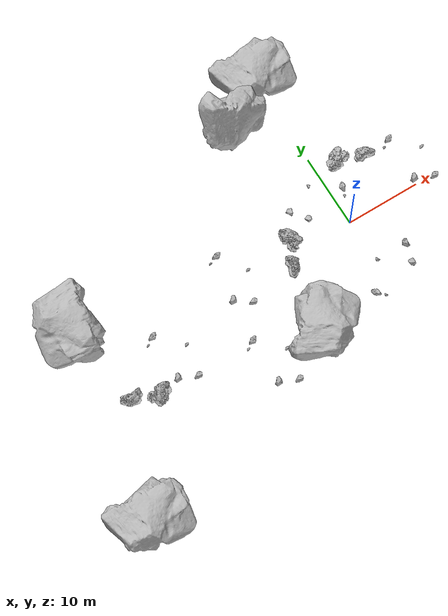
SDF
<sdf version="1.5">
 <world name="default">
  <scene>
   <background>202 150 66</background>
   <sky><clouds><speed>50</speed></clouds></sky>
   <ambient>0 0 0 1.0</ambient>
   <shadows>0</shadows>
  </scene>
  <include><uri>model://sun</uri></include>
  <include><uri>model://rockformation</uri><name>rockformation</name><pose>1 -9 -0.65 0 0 1.75</pose></include>
  <include>
   <uri>model://rockformation</uri>
   <name>rockformation2</name>
   <pose>-1 4 -0.5 3.141593 -0.008 1.7915</pose>
  </include>
  <include>
   <uri>model://rockformation</uri>
   <name>rockformation3</name>
   <pose>10.401 4.11 -0.65 0 0 0</pose>
  </include>
  <include>
   <uri>model://rockformation</uri>
   <name>rockformation4</name>
   <pose>-18.77 -9.72 -0.75 0 0 0</pose>
  </include>
  <include>
   <uri>model://rockformation</uri>
   <name>rockformation5</name>
   <pose>-29.2 -2.79 -0.6 0 0 0</pose>
  </include>
  <include>
   <uri>model://rockformation</uri>
   <name>rockformation7</name>
   <pose>-17.39 2.28 -0.9 0 0 -0.2</pose>
  </include>
  <include><uri>model://jaggedrock</uri><name>jaggedrock</name><pose>5 7 -0.75 0 0 -0.7</pose></include>
  <include><uri>model://jaggedrock</uri><name>jaggedrock2</name><pose>-9 1 -1 -0.2499 0 -2.399</pose></include>
  <include><uri>model://jaggedrock</uri><name>jaggedrock3</name><pose>-33.515 -5 -.85 0 0 2.4</pose></include>
  <include><uri>model://rock9</uri><name>rock9</name><pose>-4.844 19.6 0 1.05 .6 0</pose></include>
  <include><uri>model://rock9</uri><name>rock9_1</name><pose>1.849 23.56 0 0 0 0</pose></include>
  <include><uri>model://rock9</uri><name>rock9_2</name><pose>-39.766 -19.65 -0.4 0 0 0</pose></include>
  <include><uri>model://rock9</uri><name>rock9_3</name><pose>-38.024 6.469 -2 0 0 -1.7</pose></include>
  <include><uri>model://rock9</uri><name>rock9_4</name><pose>-8.1 -8.18 -2.85 0 0 .85</pose></include>
 </world>
</sdf>

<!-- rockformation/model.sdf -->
<sdf version='1.4'>
  <model name="rockformation">
    <static>true</static>
    <link name="link">
        <inertial>
            <mass>1</mass>
            <inertia>
              <ixx>0.166667</ixx>
              <ixy>0</ixy>
              <ixz>0</ixz>
              <iyy>0.166667</iyy>
              <iyz>0</iyz>
              <izz>0.166667</izz>
            </inertia>
            <pose frame=''>0 0 0 0 -0 0</pose>
         </inertial>

         <self_collide>1</self_collide>
         <kinematic>0</kinematic>
         <gravity>0</gravity>

          <collision name="collision">
            <geometry>
              <mesh>
                <uri>model://rockformation/meshes/rockformation.dae</uri>
              </mesh>
            </geometry>
            <surface>
              <friction>
                <ode>
                  <mu>1</mu>
                  <mu2>1</mu2>
                  <fdir1>0 0 0</fdir1>
                  <slip1>0</slip1>
                  <slip2>0</slip2>
                </ode>
                <torsional>
                  <coefficient>1</coefficient>
                  <patch_radius>0</patch_radius>
                  <surface_radius>0</surface_radius>
                  <use_patch_radius>1</use_patch_radius>
                  <ode>
                    <slip>0</slip>
                  </ode>
                </torsional>
              </friction>
              <bounce>
                <restitution_coefficient>0</restitution_coefficient>
                <threshold>1e+06</threshold>
              </bounce>
              <contact>
                <collide_without_contact>0</collide_without_contact>
                <collide_without_contact_bitmask>1</collide_without_contact_bitmask>
                <collide_bitmask>1</collide_bitmask>
                <ode>
                  <soft_cfm>0</soft_cfm>
                  <soft_erp>0.2</soft_erp>
                  <kp>1e+13</kp>
                  <kd>1</kd>
                  <max_vel>0.01</max_vel>
                  <min_depth>0</min_depth>
                </ode>
                <bullet>
                  <split_impulse>1</split_impulse>
                  <split_impulse_penetration_threshold>-0.01</split_impulse_penetration_threshold>
                  <soft_cfm>0</soft_cfm>
                  <soft_erp>0.2</soft_erp>
                  <kp>1e+13</kp>
                  <kd>1</kd>
                </bullet>
              </contact>
            </surface>
          </collision>

          <visual name="visual">
            <geometry>
              <mesh>
                <uri>model://rockformation/meshes/rockformation.dae</uri>
              </mesh>
            </geometry>
          </visual>
    </link>
  </model>
</sdf>

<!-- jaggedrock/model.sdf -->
<sdf version='1.4'>
  <model name="jaggedrock">
    <static>true</static>
    <link name="link">
        <inertial>
            <mass>1</mass>
            <inertia>
              <ixx>0.166667</ixx>
              <ixy>0</ixy>
              <ixz>0</ixz>
              <iyy>0.166667</iyy>
              <iyz>0</iyz>
              <izz>0.166667</izz>
            </inertia>
            <pose frame=''>0 0 0 0 -0 0</pose>
         </inertial>

         <self_collide>1</self_collide>
         <kinematic>0</kinematic>
         <gravity>0</gravity>

          <collision name="collision">
            <geometry>
              <mesh>
                <uri>model://jaggedrock/meshes/jaggedrock_texture.dae</uri>
              </mesh>
            </geometry>
            <surface>
              <friction>
                <ode>
                  <mu>1</mu>
                  <mu2>1</mu2>
                  <fdir1>0 0 0</fdir1>
                  <slip1>0</slip1>
                  <slip2>0</slip2>
                </ode>
                <torsional>
                  <coefficient>1</coefficient>
                  <patch_radius>0</patch_radius>
                  <surface_radius>0</surface_radius>
                  <use_patch_radius>1</use_patch_radius>
                  <ode>
                    <slip>0</slip>
                  </ode>
                </torsional>
              </friction>
              <bounce>
                <restitution_coefficient>0</restitution_coefficient>
                <threshold>1e+06</threshold>
              </bounce>
              <contact>
                <collide_without_contact>0</collide_without_contact>
                <collide_without_contact_bitmask>1</collide_without_contact_bitmask>
                <collide_bitmask>1</collide_bitmask>
                <ode>
                  <soft_cfm>0</soft_cfm>
                  <soft_erp>0.2</soft_erp>
                  <kp>1e+13</kp>
                  <kd>1</kd>
                  <max_vel>0.01</max_vel>
                  <min_depth>0</min_depth>
                </ode>
                <bullet>
                  <split_impulse>1</split_impulse>
                  <split_impulse_penetration_threshold>-0.01</split_impulse_penetration_threshold>
                  <soft_cfm>0</soft_cfm>
                  <soft_erp>0.2</soft_erp>
                  <kp>1e+13</kp>
                  <kd>1</kd>
                </bullet>
              </contact>
            </surface>
          </collision>

          <visual name="visual">
            <geometry>
              <mesh>
                <uri>model://jaggedrock/meshes/jaggedrock_texture.dae</uri>
              </mesh>
            </geometry>
          </visual>
    </link>
  </model>
</sdf>

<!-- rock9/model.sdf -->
<sdf version='1.4'>
  <model name="rock9">
    <static>true</static>
    <link name="link">
      <inertial>
        <mass>1</mass>
        <inertia>
          <ixx>0.166667</ixx>
          <ixy>0</ixy>
          <ixz>0</ixz>
          <iyy>0.166667</iyy>
          <iyz>0</iyz>
          <izz>0.166667</izz>
        </inertia>
        <pose frame=''>0 0 0 0 -0 0</pose>
      </inertial>

      <self_collide>1</self_collide>
      <kinematic>0</kinematic>
      <gravity>1</gravity>

      <collision name="collision">
        <geometry>
          <mesh>
            <uri>model://rock9/meshes/rock9.dae</uri>
          </mesh>
        </geometry>
        <surface>
          <friction>
            <ode>
              <mu>1</mu>
              <mu2>1</mu2>
              <fdir1>0 0 0</fdir1>
              <slip1>0</slip1>
              <slip2>0</slip2>
            </ode>
            <torsional>
              <coefficient>1</coefficient>
              <patch_radius>0</patch_radius>
              <surface_radius>0</surface_radius>
              <use_patch_radius>1</use_patch_radius>
              <ode>
                <slip>0</slip>
              </ode>
            </torsional>
          </friction>
          <bounce>
            <restitution_coefficient>0</restitution_coefficient>
            <threshold>1e+06</threshold>
          </bounce>
          <contact>
            <collide_without_contact>0</collide_without_contact>
            <collide_without_contact_bitmask>1</collide_without_contact_bitmask>
            <collide_bitmask>1</collide_bitmask>
            <ode>
              <soft_cfm>0</soft_cfm>
              <soft_erp>0.2</soft_erp>
              <kp>1e+13</kp>
              <kd>1</kd>
              <max_vel>0.01</max_vel>
              <min_depth>0</min_depth>
            </ode>
            <bullet>
              <split_impulse>1</split_impulse>
              <split_impulse_penetration_threshold>-0.01</split_impulse_penetration_threshold>
              <soft_cfm>0</soft_cfm>
              <soft_erp>0.2</soft_erp>
              <kp>1e+13</kp>
              <kd>1</kd>
            </bullet>
          </contact>
        </surface>
      </collision>

      <visual name="visual">
        <geometry>
          <mesh>
            <uri>model://rock9/meshes/rock9.dae</uri>
          </mesh>
        </geometry>
      </visual>
    </link>
  </model>
</sdf>
